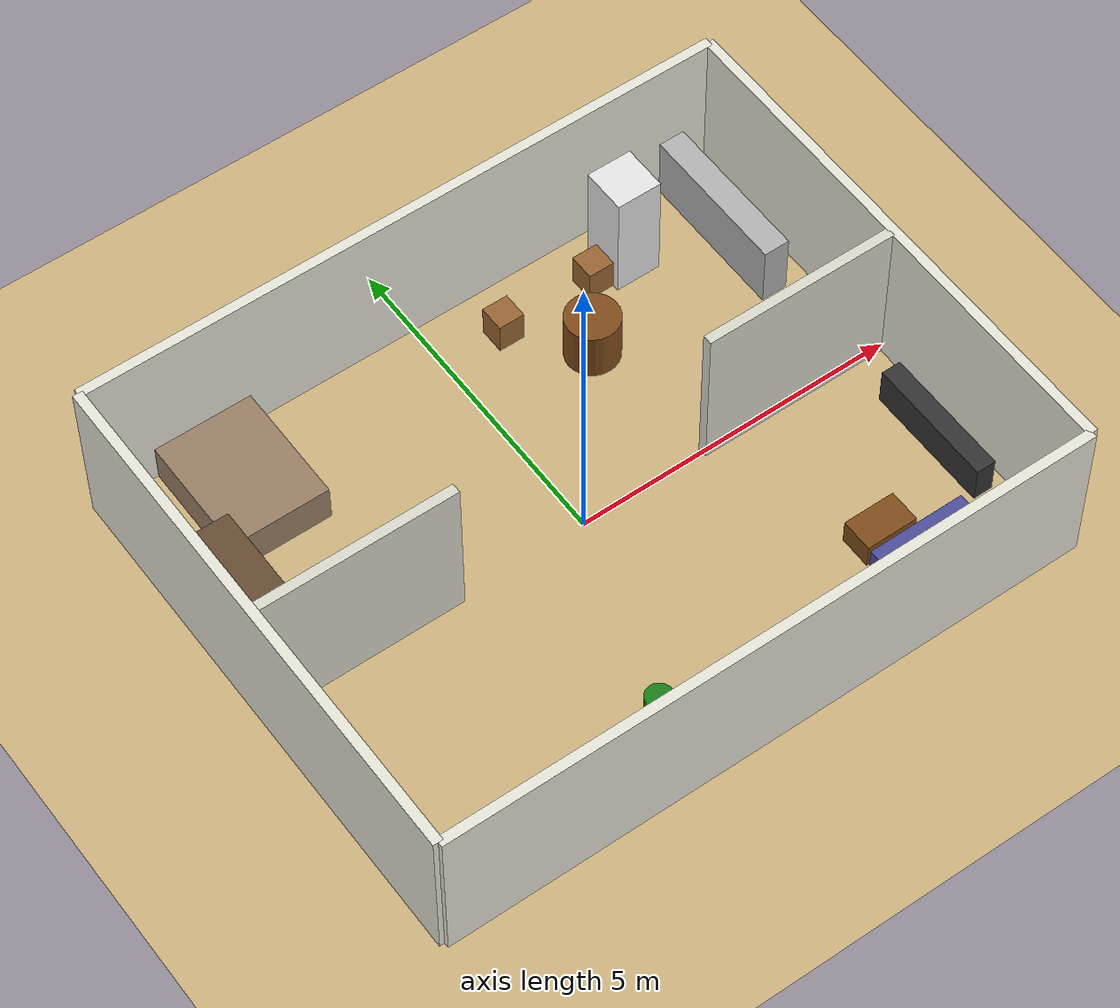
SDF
<?xml version="1.0"?>
<sdf version="1.7">
  <world name="home">
    <physics name="default_physics" type="ode">
      <max_step_size>0.004</max_step_size>
      <real_time_factor>1</real_time_factor>
      <real_time_update_rate>250</real_time_update_rate>
      <gravity>0 0 -9.8</gravity>
    </physics>

    <scene>
      <ambient>0.5 0.5 0.5 1</ambient>
      <background>0.7 0.8 0.9 1</background>
      <shadows>1</shadows>
      <grid>0</grid>
    </scene>

    <!-- 澶槼鍏?-->
    <light type="directional" name="sun">
      <cast_shadows>true</cast_shadows>
      <pose>0 0 10 0 0 0</pose>
      <diffuse>0.8 0.8 0.8 1</diffuse>
      <specular>0.2 0.2 0.2 1</specular>
      <attenuation>
        <range>1000</range>
        <constant>0.9</constant>
        <linear>0.01</linear>
        <quadratic>0.001</quadratic>
      </attenuation>
      <direction>-0.5 0.5 -1</direction>
    </light>

    <!-- 瀹ゅ唴鐏厜 -->
    <light type="point" name="living_room_light">
      <pose>4 4 2.5 0 0 0</pose>
      <diffuse>0.9 0.9 0.8 1</diffuse>
      <attenuation>
        <range>10</range>
        <constant>0.5</constant>
        <linear>0.1</linear>
        <quadratic>0.01</quadratic>
      </attenuation>
    </light>

    <light type="point" name="bedroom_light">
      <pose>-4 4 2.5 0 0 0</pose>
      <diffuse>0.9 0.9 0.8 1</diffuse>
      <attenuation>
        <range>8</range>
        <constant>0.5</constant>
        <linear>0.1</linear>
        <quadratic>0.01</quadratic>
      </attenuation>
    </light>

    <!-- Gazebo ROS 鎻掍欢                               -->
    <plugin name="gazebo_ros_init" filename="libgazebo_ros_init.so">
      <ros>
        <namespace>/</namespace>
      </ros>
      <update_rate>10.0</update_rate>
    </plugin>

    <plugin name="gazebo_ros_state" filename="libgazebo_ros_state.so">
      <ros>
        <namespace>/</namespace>
      </ros>
      <update_rate>10.0</update_rate>
    </plugin>

    <!-- 鍦伴潰 -->
    <model name="ground_plane">
      <static>true</static>
      <link name="link">
        <collision name="collision">
          <geometry>
            <plane><normal>0 0 1</normal><size>50 50</size></plane>
          </geometry>
          <surface>
            <friction>
              <ode><mu>0.6</mu><mu2>0.6</mu2></ode>
            </friction>
          </surface>
        </collision>
        <visual name="visual">
          <cast_shadows>false</cast_shadows>
          <geometry>
            <plane><normal>0 0 1</normal><size>50 50</size></plane>
          </geometry>
          <material>
            <ambient>0.8 0.7 0.5 1</ambient>
            <diffuse>0.8 0.7 0.5 1</diffuse>
            <specular>0.1 0.1 0.1 1</specular>
          </material>
        </visual>
      </link>
    </model>

    <!-- 澶栧锛?0m x 8m 鐨勬埧瀛?                         -->
    <!-- 鍧愭爣鍘熺偣鍦ㄦ埧瀛愪腑蹇冿紝x鏈濅笢(瀹㈠巺鏂瑰悜)锛寉鏈濆寳(鍗у)  -->

    <!-- 鍗楀 (y=-4) -->
    <model name="wall_south">
      <static>true</static>
      <pose>0 -4 1.25 0 0 0</pose>
      <link name="link">
        <collision name="collision">
          <geometry><box><size>10 0.15 2.5</size></box></geometry>
        </collision>
        <visual name="visual">
          <geometry><box><size>10 0.15 2.5</size></box></geometry>
          <material><ambient>0.9 0.9 0.85 1</ambient><diffuse>0.9 0.9 0.85 1</diffuse></material>
        </visual>
      </link>
    </model>

    <!-- 鍖楀 (y=4) -->
    <model name="wall_north">
      <static>true</static>
      <pose>0 4 1.25 0 0 0</pose>
      <link name="link">
        <collision name="collision">
          <geometry><box><size>10 0.15 2.5</size></box></geometry>
        </collision>
        <visual name="visual">
          <geometry><box><size>10 0.15 2.5</size></box></geometry>
          <material><ambient>0.9 0.9 0.85 1</ambient><diffuse>0.9 0.9 0.85 1</diffuse></material>
        </visual>
      </link>
    </model>

    <!-- 涓滃 (x=5) -->
    <model name="wall_east">
      <static>true</static>
      <pose>5 0 1.25 0 0 0</pose>
      <link name="link">
        <collision name="collision">
          <geometry><box><size>0.15 8 2.5</size></box></geometry>
        </collision>
        <visual name="visual">
          <geometry><box><size>0.15 8 2.5</size></box></geometry>
          <material><ambient>0.9 0.9 0.85 1</ambient><diffuse>0.9 0.9 0.85 1</diffuse></material>
        </visual>
      </link>
    </model>

    <!-- 瑗垮 (x=-5) -->
    <model name="wall_west">
      <static>true</static>
      <pose>-5 0 1.25 0 0 0</pose>
      <link name="link">
        <collision name="collision">
          <geometry><box><size>0.15 8 2.5</size></box></geometry>
        </collision>
        <visual name="visual">
          <geometry><box><size>0.15 8 2.5</size></box></geometry>
          <material><ambient>0.9 0.9 0.85 1</ambient><diffuse>0.9 0.9 0.85 1</diffuse></material>
        </visual>
      </link>
    </model>

    <!-- 鍐呭锛氬垎闅斿鍘呫€佸崸瀹ゃ€佸帹鎴裤€佸崼鐢熼棿               -->

    <!-- 瀹㈠巺鍜屽崸瀹や箣闂寸殑澧?(y=0, x浠?5鍒?2, 鐣?m闂ㄦ礊) -->
    <model name="wall_divide_1">
      <static>true</static>
      <pose>-3.45 0 1.25 0 0 0</pose>
      <link name="link">
        <collision name="collision">
          <geometry><box><size>3 0.15 2.5</size></box></geometry>
        </collision>
        <visual name="visual">
          <geometry><box><size>3 0.15 2.5</size></box></geometry>
          <material><ambient>0.85 0.85 0.8 1</ambient><diffuse>0.85 0.85 0.8 1</diffuse></material>
        </visual>
      </link>
    </model>

    <!-- 瀹㈠巺鍜屽帹鎴夸箣闂寸殑澧?(y=0, x浠?鍒?, 鐣?m闂ㄦ礊) -->
    <model name="wall_divide_2">
      <static>true</static>
      <pose>3.45 0 1.25 0 0 0</pose>
      <link name="link">
        <collision name="collision">
          <geometry><box><size>3 0.15 2.5</size></box></geometry>
        </collision>
        <visual name="visual">
          <geometry><box><size>3 0.15 2.5</size></box></geometry>
          <material><ambient>0.85 0.85 0.8 1</ambient><diffuse>0.85 0.85 0.8 1</diffuse></material>
        </visual>
      </link>
    </model>

    <!-- 娉? wall_hall_1 宸茬Щ闄わ紝4m瀹介棬娲炶冻澶熼€氳锛屾棤闇€璧板粖澧?-->

    <!-- 瀹跺叿锛氬鍘?                                   -->

    <!-- 娌欏彂 -->
    <model name="sofa">
      <static>true</static>
      <pose>3.25 -3.15 0.3 0 0 0</pose>
      <link name="link">
        <collision name="collision">
          <geometry><box><size>1.5 0.6 0.6</size></box></geometry>
        </collision>
        <visual name="visual">
          <geometry><box><size>1.5 0.6 0.6</size></box></geometry>
          <material><ambient>0.3 0.3 0.6 1</ambient><diffuse>0.3 0.3 0.6 1</diffuse></material>
        </visual>
      </link>
    </model>

    <!-- 鑼跺嚑 -->
    <model name="coffee_table">
      <static>true</static>
      <pose>3.0 -2.45 0.2 0 0 0</pose>
      <link name="link">
        <collision name="collision">
          <geometry><box><size>0.8 0.5 0.4</size></box></geometry>
        </collision>
        <visual name="visual">
          <geometry><box><size>0.8 0.5 0.4</size></box></geometry>
          <material><ambient>0.5 0.3 0.1 1</ambient><diffuse>0.5 0.3 0.1 1</diffuse></material>
        </visual>
      </link>
    </model>

    <!-- 鐢佃鏌?-->
    <model name="tv_stand">
      <static>true</static>
      <pose>4.55 -1.7 0.3 0 0 0</pose>
      <link name="link">
        <collision name="collision">
          <geometry><box><size>0.3 2 0.6</size></box></geometry>
        </collision>
        <visual name="visual">
          <geometry><box><size>0.3 2 0.6</size></box></geometry>
          <material><ambient>0.2 0.2 0.2 1</ambient><diffuse>0.2 0.2 0.2 1</diffuse></material>
        </visual>
      </link>
    </model>

    <!-- 瀹跺叿锛氬崸瀹?                                   -->

    <model name="bed">
      <static>true</static>
      <pose>-3.35 3.05 0.3 0 0 0</pose>
      <link name="link">
        <collision name="collision">
          <geometry><box><size>1.5 2 0.6</size></box></geometry>
        </collision>
        <visual name="visual">
          <geometry><box><size>1.5 2 0.6</size></box></geometry>
          <material><ambient>0.6 0.5 0.4 1</ambient><diffuse>0.6 0.5 0.4 1</diffuse></material>
        </visual>
      </link>
    </model>

    <!-- 琛ｆ煖 -->
    <model name="wardrobe">
      <static>true</static>
      <pose>-4.55 0.9 1.0 0 0 0</pose>
      <link name="link">
        <collision name="collision">
          <geometry><box><size>0.5 1.5 2.0</size></box></geometry>
        </collision>
        <visual name="visual">
          <geometry><box><size>0.5 1.5 2.0</size></box></geometry>
          <material><ambient>0.4 0.3 0.2 1</ambient><diffuse>0.4 0.3 0.2 1</diffuse></material>
        </visual>
      </link>
    </model>

    <!-- 搴婂ご鏌?-->
    <model name="nightstand">
      <static>true</static>
      <pose>-2.95 3.2 0.25 0 0 0</pose>
      <link name="link">
        <collision name="collision">
          <geometry><box><size>0.4 0.4 0.5</size></box></geometry>
        </collision>
        <visual name="visual">
          <geometry><box><size>0.4 0.4 0.5</size></box></geometry>
          <material><ambient>0.5 0.3 0.1 1</ambient><diffuse>0.5 0.3 0.1 1</diffuse></material>
        </visual>
      </link>
    </model>

    <!-- 瀹跺叿锛氬帹鎴?                                   -->

    <!-- 姗辨煖 -->
    <model name="kitchen_cabinet">
      <static>true</static>
      <pose>4.35 3.05 0.5 0 0 0</pose>
      <link name="link">
        <collision name="collision">
          <geometry><box><size>0.4 3 1.0</size></box></geometry>
        </collision>
        <visual name="visual">
          <geometry><box><size>0.4 3 1.0</size></box></geometry>
          <material><ambient>0.7 0.7 0.7 1</ambient><diffuse>0.7 0.7 0.7 1</diffuse></material>
        </visual>
      </link>
    </model>

    <!-- 鍐扮 -->
    <model name="fridge">
      <static>true</static>
      <pose>3.0 3.2 0.9 0 0 0</pose>
      <link name="link">
        <collision name="collision">
          <geometry><box><size>0.7 0.7 1.8</size></box></geometry>
        </collision>
        <visual name="visual">
          <geometry><box><size>0.7 0.7 1.8</size></box></geometry>
          <material><ambient>0.9 0.9 0.9 1</ambient><diffuse>0.9 0.9 0.9 1</diffuse></material>
        </visual>
      </link>
    </model>

    <!-- 椁愭 -->
    <model name="dining_table">
      <static>true</static>
      <pose>1.75 2.2 0.4 0 0 0</pose>
      <link name="link">
        <collision name="collision">
          <geometry><cylinder><radius>0.4</radius><length>0.8</length></cylinder></geometry>
        </collision>
        <visual name="visual">
          <geometry><cylinder><radius>0.4</radius><length>0.8</length></cylinder></geometry>
          <material><ambient>0.5 0.3 0.1 1</ambient><diffuse>0.5 0.3 0.1 1</diffuse></material>
        </visual>
      </link>
    </model>

    <!-- 鍏朵粬闅滅鐗?                                   -->

    <!-- 鐩嗘牻 -->
    <model name="plant_1">
      <static>true</static>
      <pose>-1 -3 0.3 0 0 0</pose>
      <link name="link">
        <collision name="collision">
          <geometry><cylinder><radius>0.2</radius><length>0.6</length></cylinder></geometry>
        </collision>
        <visual name="visual">
          <geometry><cylinder><radius>0.2</radius><length>0.6</length></cylinder></geometry>
          <material><ambient>0.1 0.5 0.1 1</ambient><diffuse>0.1 0.5 0.1 1</diffuse></material>
        </visual>
      </link>
    </model>

    <!-- 妞呭瓙1 -->
    <model name="chair_1">
      <static>true</static>
      <pose>0.95 3.15 0.25 0 0 0</pose>
      <link name="link">
        <collision name="collision">
          <geometry><box><size>0.4 0.4 0.5</size></box></geometry>
        </collision>
        <visual name="visual">
          <geometry><box><size>0.4 0.4 0.5</size></box></geometry>
          <material><ambient>0.6 0.4 0.2 1</ambient><diffuse>0.6 0.4 0.2 1</diffuse></material>
        </visual>
      </link>
    </model>

    <!-- 妞呭瓙2 -->
    <model name="chair_2">
      <static>true</static>
      <pose>2.45 3.15 0.25 0 0 0</pose>
      <link name="link">
        <collision name="collision">
          <geometry><box><size>0.4 0.4 0.5</size></box></geometry>
        </collision>
        <visual name="visual">
          <geometry><box><size>0.4 0.4 0.5</size></box></geometry>
          <material><ambient>0.6 0.4 0.2 1</ambient><diffuse>0.6 0.4 0.2 1</diffuse></material>
        </visual>
      </link>
    </model>

    <!-- 鍏呯數妗╋紙浣嶄簬瀹㈠巺瑙掕惤锛屾満鍣ㄤ汉璧风偣闄勮繎锛?         -->
    <model name="charging_dock">
      <static>true</static>
      <pose>-1.35 -3.2 0.15 0 0 0</pose>
      <link name="link">
        <collision name="collision">
          <geometry><box><size>0.3 0.2 0.3</size></box></geometry>
        </collision>
        <visual name="visual_base">
          <pose>0 0 -0.05 0 0 0</pose>
          <geometry><box><size>0.3 0.2 0.2</size></box></geometry>
          <material><ambient>0.2 0.2 0.2 1</ambient><diffuse>0.2 0.2 0.2 1</diffuse></material>
        </visual>
        <visual name="visual_led">
          <pose>0 0 0.12 0 0 0</pose>
          <geometry><box><size>0.15 0.08 0.04</size></box></geometry>
          <material><ambient>0.0 0.8 0.0 1</ambient><diffuse>0.0 1.0 0.0 1</diffuse></material>
        </visual>
      </link>
    </model>

  </world>
</sdf>
